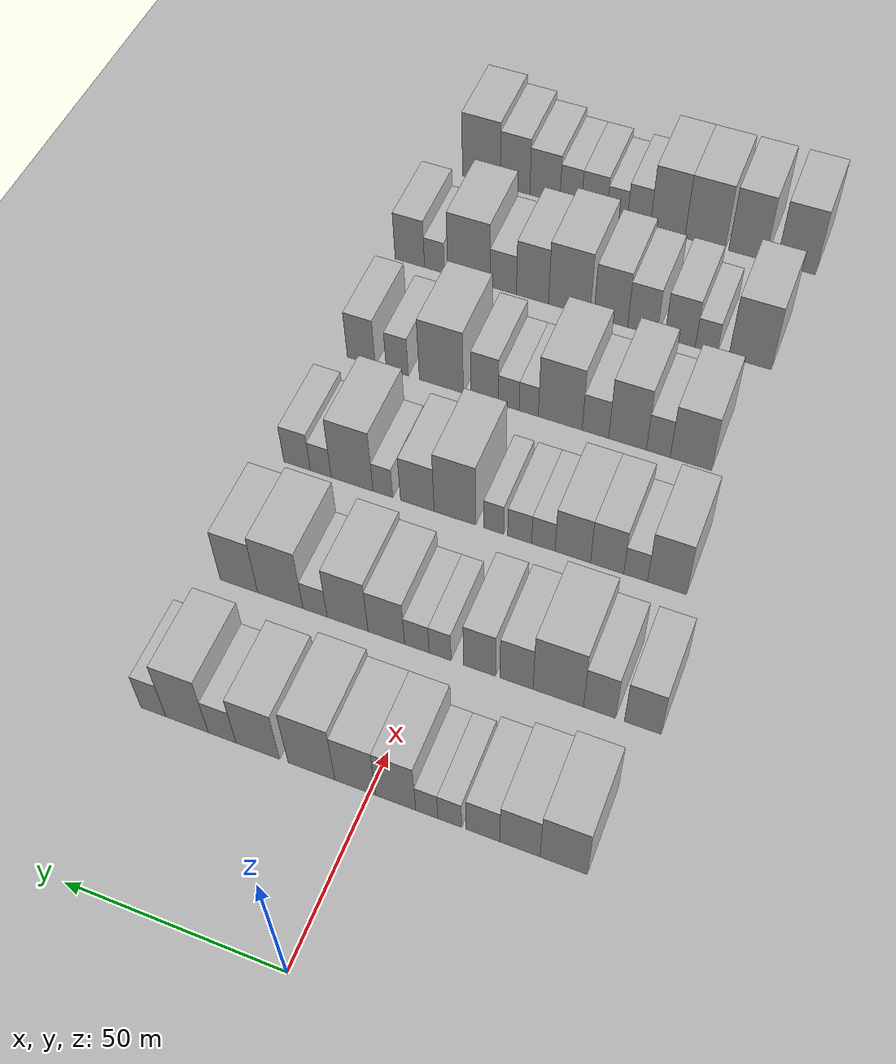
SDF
<sdf version="1.6">
 <world name="default">
  <include><name>ground_plane_1</name><uri>model://HANNAS_ground_plane</uri></include>
  <include>
   <name>ground_plane_2</name>
   <uri>model://HANNAS_ground_plane</uri>
   <pose>100 0 0  0 0 0</pose>
  </include>
  <model name="building_58">
   <static>1</static>
   <pose>50.0000 -43.3810 0 0.000000 0.000000 0.000000</pose>
   <link name="link">
    <pose>0 0 10.50 0 0 0</pose>
    <collision name="collision"><geometry><box><size>20.0000 10.2477 21.0000</size></box></geometry></collision>
    <visual name="visual">
     <cast_shadows>0</cast_shadows>
     <geometry><box><size>20.0000 10.2477 21.0000</size></box></geometry>
     <material>
      <script>
       <uri>model://HANNAS_wall/materials/scripts</uri>
       <uri>model://HANNAS_wall/materials/textures</uri>
       <name>vrc/HANNAS_wall</name>
      </script>
     </material>
    </visual>
   </link>
  </model>
  <model name="building_59">
   <static>1</static>
   <pose>50.0000 -33.8395 0 0.000000 0.000000 0.000000</pose>
   <link name="link">
    <pose>0 0 9.00 0 0 0</pose>
    <collision name="collision"><geometry><box><size>20.0000 8.8353 18.0000</size></box></geometry></collision>
    <visual name="visual">
     <cast_shadows>0</cast_shadows>
     <geometry><box><size>20.0000 8.8353 18.0000</size></box></geometry>
     <material>
      <script>
       <uri>model://HANNAS_wall/materials/scripts</uri>
       <uri>model://HANNAS_wall/materials/textures</uri>
       <name>vrc/HANNAS_wall</name>
      </script>
     </material>
    </visual>
   </link>
  </model>
  <model name="building_60">
   <static>1</static>
   <pose>50.0000 -25.6887 0 0.000000 0.000000 0.000000</pose>
   <link name="link">
    <pose>0 0 7.50 0 0 0</pose>
    <collision name="collision"><geometry><box><size>20.0000 7.4663 15.0000</size></box></geometry></collision>
    <visual name="visual">
     <cast_shadows>0</cast_shadows>
     <geometry><box><size>20.0000 7.4663 15.0000</size></box></geometry>
     <material>
      <script>
       <uri>model://HANNAS_wall/materials/scripts</uri>
       <uri>model://HANNAS_wall/materials/textures</uri>
       <name>vrc/HANNAS_wall</name>
      </script>
     </material>
    </visual>
   </link>
  </model>
  <model name="building_61">
   <static>1</static>
   <pose>50.0000 -18.2932 0 0.000000 0.000000 0.000000</pose>
   <link name="link">
    <pose>0 0 6.00 0 0 0</pose>
    <collision name="collision"><geometry><box><size>20.0000 5.3248 12.0000</size></box></geometry></collision>
    <visual name="visual">
     <cast_shadows>0</cast_shadows>
     <geometry><box><size>20.0000 5.3248 12.0000</size></box></geometry>
     <material>
      <script>
       <uri>model://HANNAS_wall/materials/scripts</uri>
       <uri>model://HANNAS_wall/materials/textures</uri>
       <name>vrc/HANNAS_wall</name>
      </script>
     </material>
    </visual>
   </link>
  </model>
  <model name="building_62">
   <static>1</static>
   <pose>50.0000 -13.1218 0 0.000000 0.000000 0.000000</pose>
   <link name="link">
    <pose>0 0 6.00 0 0 0</pose>
    <collision name="collision"><geometry><box><size>20.0000 5.0180 12.0000</size></box></geometry></collision>
    <visual name="visual">
     <cast_shadows>0</cast_shadows>
     <geometry><box><size>20.0000 5.0180 12.0000</size></box></geometry>
     <material>
      <script>
       <uri>model://HANNAS_wall/materials/scripts</uri>
       <uri>model://HANNAS_wall/materials/textures</uri>
       <name>vrc/HANNAS_wall</name>
      </script>
     </material>
    </visual>
   </link>
  </model>
  <model name="building_63">
   <static>1</static>
   <pose>50.0000 -6.0770 0 0.000000 0.000000 0.000000</pose>
   <link name="link">
    <pose>0 0 10.50 0 0 0</pose>
    <collision name="collision"><geometry><box><size>20.0000 9.0715 21.0000</size></box></geometry></collision>
    <visual name="visual">
     <cast_shadows>0</cast_shadows>
     <geometry><box><size>20.0000 9.0715 21.0000</size></box></geometry>
     <material>
      <script>
       <uri>model://HANNAS_wall/materials/scripts</uri>
       <uri>model://HANNAS_wall/materials/textures</uri>
       <name>vrc/HANNAS_wall</name>
      </script>
     </material>
    </visual>
   </link>
  </model>
  <model name="building_64">
   <static>1</static>
   <pose>50.0000 3.1595 0 0.000000 0.000000 0.000000</pose>
   <link name="link">
    <pose>0 0 10.50 0 0 0</pose>
    <collision name="collision"><geometry><box><size>20.0000 9.4016 21.0000</size></box></geometry></collision>
    <visual name="visual">
     <cast_shadows>0</cast_shadows>
     <geometry><box><size>20.0000 9.4016 21.0000</size></box></geometry>
     <material>
      <script>
       <uri>model://HANNAS_wall/materials/scripts</uri>
       <uri>model://HANNAS_wall/materials/textures</uri>
       <name>vrc/HANNAS_wall</name>
      </script>
     </material>
    </visual>
   </link>
  </model>
  <model name="building_65">
   <static>1</static>
   <pose>50.0000 13.3394 0 0.000000 0.000000 0.000000</pose>
   <link name="link">
    <pose>0 0 12.00 0 0 0</pose>
    <collision name="collision"><geometry><box><size>20.0000 10.9582 24.0000</size></box></geometry></collision>
    <visual name="visual">
     <cast_shadows>0</cast_shadows>
     <geometry><box><size>20.0000 10.9582 24.0000</size></box></geometry>
     <material>
      <script>
       <uri>model://HANNAS_wall/materials/scripts</uri>
       <uri>model://HANNAS_wall/materials/textures</uri>
       <name>vrc/HANNAS_wall</name>
      </script>
     </material>
    </visual>
   </link>
  </model>
  <model name="building_66">
   <static>1</static>
   <pose>50.0000 25.9769 0 0.000000 0.000000 0.000000</pose>
   <link name="link">
    <pose>0 0 10.50 0 0 0</pose>
    <collision name="collision"><geometry><box><size>20.0000 10.3168 21.0000</size></box></geometry></collision>
    <visual name="visual">
     <cast_shadows>0</cast_shadows>
     <geometry><box><size>20.0000 10.3168 21.0000</size></box></geometry>
     <material>
      <script>
       <uri>model://HANNAS_wall/materials/scripts</uri>
       <uri>model://HANNAS_wall/materials/textures</uri>
       <name>vrc/HANNAS_wall</name>
      </script>
     </material>
    </visual>
   </link>
  </model>
  <model name="building_67">
   <static>1</static>
   <pose>50.0000 34.4689 0 0.000000 0.000000 0.000000</pose>
   <link name="link">
    <pose>0 0 7.50 0 0 0</pose>
    <collision name="collision"><geometry><box><size>20.0000 6.6673 15.0000</size></box></geometry></collision>
    <visual name="visual">
     <cast_shadows>0</cast_shadows>
     <geometry><box><size>20.0000 6.6673 15.0000</size></box></geometry>
     <material>
      <script>
       <uri>model://HANNAS_wall/materials/scripts</uri>
       <uri>model://HANNAS_wall/materials/textures</uri>
       <name>vrc/HANNAS_wall</name>
      </script>
     </material>
    </visual>
   </link>
  </model>
  <model name="building_68">
   <static>1</static>
   <pose>50.0000 42.9290 0 0.000000 0.000000 0.000000</pose>
   <link name="link">
    <pose>0 0 12.00 0 0 0</pose>
    <collision name="collision"><geometry><box><size>20.0000 10.2528 24.0000</size></box></geometry></collision>
    <visual name="visual">
     <cast_shadows>0</cast_shadows>
     <geometry><box><size>20.0000 10.2528 24.0000</size></box></geometry>
     <material>
      <script>
       <uri>model://HANNAS_wall/materials/scripts</uri>
       <uri>model://HANNAS_wall/materials/textures</uri>
       <name>vrc/HANNAS_wall</name>
      </script>
     </material>
    </visual>
   </link>
  </model>
  <model name="building_69">
   <static>1</static>
   <pose>50.0000 51.0930 0 0.000000 0.000000 0.000000</pose>
   <link name="link">
    <pose>0 0 7.50 0 0 0</pose>
    <collision name="collision"><geometry><box><size>20.0000 6.0752 15.0000</size></box></geometry></collision>
    <visual name="visual">
     <cast_shadows>0</cast_shadows>
     <geometry><box><size>20.0000 6.0752 15.0000</size></box></geometry>
     <material>
      <script>
       <uri>model://HANNAS_wall/materials/scripts</uri>
       <uri>model://HANNAS_wall/materials/textures</uri>
       <name>vrc/HANNAS_wall</name>
      </script>
     </material>
    </visual>
   </link>
  </model>
  <model name="building_189">
   <static>1</static>
   <pose>85.0000 -49.0191 0 0.000000 0.000000 0.000000</pose>
   <link name="link">
    <pose>0 0 9.00 0 0 0</pose>
    <collision name="collision"><geometry><box><size>20.0000 8.3148 18.0000</size></box></geometry></collision>
    <visual name="visual">
     <cast_shadows>0</cast_shadows>
     <geometry><box><size>20.0000 8.3148 18.0000</size></box></geometry>
     <material>
      <script>
       <uri>model://HANNAS_wall/materials/scripts</uri>
       <uri>model://HANNAS_wall/materials/textures</uri>
       <name>vrc/HANNAS_wall</name>
      </script>
     </material>
    </visual>
   </link>
  </model>
  <model name="building_190">
   <static>1</static>
   <pose>85.0000 -39.1800 0 0.000000 0.000000 0.000000</pose>
   <link name="link">
    <pose>0 0 9.00 0 0 0</pose>
    <collision name="collision"><geometry><box><size>20.0000 7.3633 18.0000</size></box></geometry></collision>
    <visual name="visual">
     <cast_shadows>0</cast_shadows>
     <geometry><box><size>20.0000 7.3633 18.0000</size></box></geometry>
     <material>
      <script>
       <uri>model://HANNAS_wall/materials/scripts</uri>
       <uri>model://HANNAS_wall/materials/textures</uri>
       <name>vrc/HANNAS_wall</name>
      </script>
     </material>
    </visual>
   </link>
  </model>
  <model name="building_191">
   <static>1</static>
   <pose>85.0000 -29.6433 0 0.000000 0.000000 0.000000</pose>
   <link name="link">
    <pose>0 0 12.00 0 0 0</pose>
    <collision name="collision"><geometry><box><size>20.0000 11.7102 24.0000</size></box></geometry></collision>
    <visual name="visual">
     <cast_shadows>0</cast_shadows>
     <geometry><box><size>20.0000 11.7102 24.0000</size></box></geometry>
     <material>
      <script>
       <uri>model://HANNAS_wall/materials/scripts</uri>
       <uri>model://HANNAS_wall/materials/textures</uri>
       <name>vrc/HANNAS_wall</name>
      </script>
     </material>
    </visual>
   </link>
  </model>
  <model name="building_192">
   <static>1</static>
   <pose>85.0000 -19.9071 0 0.000000 0.000000 0.000000</pose>
   <link name="link">
    <pose>0 0 9.00 0 0 0</pose>
    <collision name="collision"><geometry><box><size>20.0000 7.7620 18.0000</size></box></geometry></collision>
    <visual name="visual">
     <cast_shadows>0</cast_shadows>
     <geometry><box><size>20.0000 7.7620 18.0000</size></box></geometry>
     <material>
      <script>
       <uri>model://HANNAS_wall/materials/scripts</uri>
       <uri>model://HANNAS_wall/materials/textures</uri>
       <name>vrc/HANNAS_wall</name>
      </script>
     </material>
    </visual>
   </link>
  </model>
  <model name="building_193">
   <static>1</static>
   <pose>85.0000 -11.2495 0 0.000000 0.000000 0.000000</pose>
   <link name="link">
    <pose>0 0 9.00 0 0 0</pose>
    <collision name="collision"><geometry><box><size>20.0000 7.5532 18.0000</size></box></geometry></collision>
    <visual name="visual">
     <cast_shadows>0</cast_shadows>
     <geometry><box><size>20.0000 7.5532 18.0000</size></box></geometry>
     <material>
      <script>
       <uri>model://HANNAS_wall/materials/scripts</uri>
       <uri>model://HANNAS_wall/materials/textures</uri>
       <name>vrc/HANNAS_wall</name>
      </script>
     </material>
    </visual>
   </link>
  </model>
  <model name="building_194">
   <static>1</static>
   <pose>85.0000 -1.8340 0 0.000000 0.000000 0.000000</pose>
   <link name="link">
    <pose>0 0 6.00 0 0 0</pose>
    <collision name="collision"><geometry><box><size>20.0000 5.2779 12.0000</size></box></geometry></collision>
    <visual name="visual">
     <cast_shadows>0</cast_shadows>
     <geometry><box><size>20.0000 5.2779 12.0000</size></box></geometry>
     <material>
      <script>
       <uri>model://HANNAS_wall/materials/scripts</uri>
       <uri>model://HANNAS_wall/materials/textures</uri>
       <name>vrc/HANNAS_wall</name>
      </script>
     </material>
    </visual>
   </link>
  </model>
  <model name="building_195">
   <static>1</static>
   <pose>85.0000 3.7657 0 0.000000 0.000000 0.000000</pose>
   <link name="link">
    <pose>0 0 6.00 0 0 0</pose>
    <collision name="collision"><geometry><box><size>20.0000 5.9214 12.0000</size></box></geometry></collision>
    <visual name="visual">
     <cast_shadows>0</cast_shadows>
     <geometry><box><size>20.0000 5.9214 12.0000</size></box></geometry>
     <material>
      <script>
       <uri>model://HANNAS_wall/materials/scripts</uri>
       <uri>model://HANNAS_wall/materials/textures</uri>
       <name>vrc/HANNAS_wall</name>
      </script>
     </material>
    </visual>
   </link>
  </model>
  <model name="building_196">
   <static>1</static>
   <pose>85.0000 11.1838 0 0.000000 0.000000 0.000000</pose>
   <link name="link">
    <pose>0 0 9.00 0 0 0</pose>
    <collision name="collision"><geometry><box><size>20.0000 8.9149 18.0000</size></box></geometry></collision>
    <visual name="visual">
     <cast_shadows>0</cast_shadows>
     <geometry><box><size>20.0000 8.9149 18.0000</size></box></geometry>
     <material>
      <script>
       <uri>model://HANNAS_wall/materials/scripts</uri>
       <uri>model://HANNAS_wall/materials/textures</uri>
       <name>vrc/HANNAS_wall</name>
      </script>
     </material>
    </visual>
   </link>
  </model>
  <model name="building_197">
   <static>1</static>
   <pose>85.0000 20.6890 0 0.000000 0.000000 0.000000</pose>
   <link name="link">
    <pose>0 0 10.50 0 0 0</pose>
    <collision name="collision"><geometry><box><size>20.0000 10.0955 21.0000</size></box></geometry></collision>
    <visual name="visual">
     <cast_shadows>0</cast_shadows>
     <geometry><box><size>20.0000 10.0955 21.0000</size></box></geometry>
     <material>
      <script>
       <uri>model://HANNAS_wall/materials/scripts</uri>
       <uri>model://HANNAS_wall/materials/textures</uri>
       <name>vrc/HANNAS_wall</name>
      </script>
     </material>
    </visual>
   </link>
  </model>
  <model name="building_198">
   <static>1</static>
   <pose>85.0000 28.7347 0 0.000000 0.000000 0.000000</pose>
   <link name="link">
    <pose>0 0 6.00 0 0 0</pose>
    <collision name="collision"><geometry><box><size>20.0000 5.9960 12.0000</size></box></geometry></collision>
    <visual name="visual">
     <cast_shadows>0</cast_shadows>
     <geometry><box><size>20.0000 5.9960 12.0000</size></box></geometry>
     <material>
      <script>
       <uri>model://HANNAS_wall/materials/scripts</uri>
       <uri>model://HANNAS_wall/materials/textures</uri>
       <name>vrc/HANNAS_wall</name>
      </script>
     </material>
    </visual>
   </link>
  </model>
  <model name="building_199">
   <static>1</static>
   <pose>85.0000 37.4100 0 0.000000 0.000000 0.000000</pose>
   <link name="link">
    <pose>0 0 12.00 0 0 0</pose>
    <collision name="collision"><geometry><box><size>20.0000 11.3546 24.0000</size></box></geometry></collision>
    <visual name="visual">
     <cast_shadows>0</cast_shadows>
     <geometry><box><size>20.0000 11.3546 24.0000</size></box></geometry>
     <material>
      <script>
       <uri>model://HANNAS_wall/materials/scripts</uri>
       <uri>model://HANNAS_wall/materials/textures</uri>
       <name>vrc/HANNAS_wall</name>
      </script>
     </material>
    </visual>
   </link>
  </model>
  <model name="building_200">
   <static>1</static>
   <pose>85.0000 47.8428 0 0.000000 0.000000 0.000000</pose>
   <link name="link">
    <pose>0 0 10.50 0 0 0</pose>
    <collision name="collision"><geometry><box><size>20.0000 9.5109 21.0000</size></box></geometry></collision>
    <visual name="visual">
     <cast_shadows>0</cast_shadows>
     <geometry><box><size>20.0000 9.5109 21.0000</size></box></geometry>
     <material>
      <script>
       <uri>model://HANNAS_wall/materials/scripts</uri>
       <uri>model://HANNAS_wall/materials/textures</uri>
       <name>vrc/HANNAS_wall</name>
      </script>
     </material>
    </visual>
   </link>
  </model>
  <model name="building_317">
   <static>1</static>
   <pose>120.0000 -43.5083 0 0.000000 0.000000 0.000000</pose>
   <link name="link">
    <pose>0 0 10.50 0 0 0</pose>
    <collision name="collision"><geometry><box><size>20.0000 9.3538 21.0000</size></box></geometry></collision>
    <visual name="visual">
     <cast_shadows>0</cast_shadows>
     <geometry><box><size>20.0000 9.3538 21.0000</size></box></geometry>
     <material>
      <script>
       <uri>model://HANNAS_wall/materials/scripts</uri>
       <uri>model://HANNAS_wall/materials/textures</uri>
       <name>vrc/HANNAS_wall</name>
      </script>
     </material>
    </visual>
   </link>
  </model>
  <model name="building_318">
   <static>1</static>
   <pose>120.0000 -35.9834 0 0.000000 0.000000 0.000000</pose>
   <link name="link">
    <pose>0 0 6.00 0 0 0</pose>
    <collision name="collision"><geometry><box><size>20.0000 5.6960 12.0000</size></box></geometry></collision>
    <visual name="visual">
     <cast_shadows>0</cast_shadows>
     <geometry><box><size>20.0000 5.6960 12.0000</size></box></geometry>
     <material>
      <script>
       <uri>model://HANNAS_wall/materials/scripts</uri>
       <uri>model://HANNAS_wall/materials/textures</uri>
       <name>vrc/HANNAS_wall</name>
      </script>
     </material>
    </visual>
   </link>
  </model>
  <model name="building_319">
   <static>1</static>
   <pose>120.0000 -29.0866 0 0.000000 0.000000 0.000000</pose>
   <link name="link">
    <pose>0 0 9.00 0 0 0</pose>
    <collision name="collision"><geometry><box><size>20.0000 8.0976 18.0000</size></box></geometry></collision>
    <visual name="visual">
     <cast_shadows>0</cast_shadows>
     <geometry><box><size>20.0000 8.0976 18.0000</size></box></geometry>
     <material>
      <script>
       <uri>model://HANNAS_wall/materials/scripts</uri>
       <uri>model://HANNAS_wall/materials/textures</uri>
       <name>vrc/HANNAS_wall</name>
      </script>
     </material>
    </visual>
   </link>
  </model>
  <model name="building_320">
   <static>1</static>
   <pose>120.0000 -20.6810 0 0.000000 0.000000 0.000000</pose>
   <link name="link">
    <pose>0 0 9.00 0 0 0</pose>
    <collision name="collision"><geometry><box><size>20.0000 8.7137 18.0000</size></box></geometry></collision>
    <visual name="visual">
     <cast_shadows>0</cast_shadows>
     <geometry><box><size>20.0000 8.7137 18.0000</size></box></geometry>
     <material>
      <script>
       <uri>model://HANNAS_wall/materials/scripts</uri>
       <uri>model://HANNAS_wall/materials/textures</uri>
       <name>vrc/HANNAS_wall</name>
      </script>
     </material>
    </visual>
   </link>
  </model>
  <model name="building_321">
   <static>1</static>
   <pose>120.0000 -13.4389 0 0.000000 0.000000 0.000000</pose>
   <link name="link">
    <pose>0 0 6.00 0 0 0</pose>
    <collision name="collision"><geometry><box><size>20.0000 5.7705 12.0000</size></box></geometry></collision>
    <visual name="visual">
     <cast_shadows>0</cast_shadows>
     <geometry><box><size>20.0000 5.7705 12.0000</size></box></geometry>
     <material>
      <script>
       <uri>model://HANNAS_wall/materials/scripts</uri>
       <uri>model://HANNAS_wall/materials/textures</uri>
       <name>vrc/HANNAS_wall</name>
      </script>
     </material>
    </visual>
   </link>
  </model>
  <model name="building_322">
   <static>1</static>
   <pose>120.0000 -7.5664 0 0.000000 0.000000 0.000000</pose>
   <link name="link">
    <pose>0 0 6.00 0 0 0</pose>
    <collision name="collision"><geometry><box><size>20.0000 5.9745 12.0000</size></box></geometry></collision>
    <visual name="visual">
     <cast_shadows>0</cast_shadows>
     <geometry><box><size>20.0000 5.9745 12.0000</size></box></geometry>
     <material>
      <script>
       <uri>model://HANNAS_wall/materials/scripts</uri>
       <uri>model://HANNAS_wall/materials/textures</uri>
       <name>vrc/HANNAS_wall</name>
      </script>
     </material>
    </visual>
   </link>
  </model>
  <model name="building_323">
   <static>1</static>
   <pose>120.0000 -1.0711 0 0.000000 0.000000 0.000000</pose>
   <link name="link">
    <pose>0 0 6.00 0 0 0</pose>
    <collision name="collision"><geometry><box><size>20.0000 5.0162 12.0000</size></box></geometry></collision>
    <visual name="visual">
     <cast_shadows>0</cast_shadows>
     <geometry><box><size>20.0000 5.0162 12.0000</size></box></geometry>
     <material>
      <script>
       <uri>model://HANNAS_wall/materials/scripts</uri>
       <uri>model://HANNAS_wall/materials/textures</uri>
       <name>vrc/HANNAS_wall</name>
      </script>
     </material>
    </visual>
   </link>
  </model>
  <model name="building_324">
   <static>1</static>
   <pose>120.0000 8.6965 0 0.000000 0.000000 0.000000</pose>
   <link name="link">
    <pose>0 0 12.00 0 0 0</pose>
    <collision name="collision"><geometry><box><size>20.0000 10.5190 24.0000</size></box></geometry></collision>
    <visual name="visual">
     <cast_shadows>0</cast_shadows>
     <geometry><box><size>20.0000 10.5190 24.0000</size></box></geometry>
     <material>
      <script>
       <uri>model://HANNAS_wall/materials/scripts</uri>
       <uri>model://HANNAS_wall/materials/textures</uri>
       <name>vrc/HANNAS_wall</name>
      </script>
     </material>
    </visual>
   </link>
  </model>
  <model name="building_325">
   <static>1</static>
   <pose>120.0000 18.2817 0 0.000000 0.000000 0.000000</pose>
   <link name="link">
    <pose>0 0 9.00 0 0 0</pose>
    <collision name="collision"><geometry><box><size>20.0000 8.6515 18.0000</size></box></geometry></collision>
    <visual name="visual">
     <cast_shadows>0</cast_shadows>
     <geometry><box><size>20.0000 8.6515 18.0000</size></box></geometry>
     <material>
      <script>
       <uri>model://HANNAS_wall/materials/scripts</uri>
       <uri>model://HANNAS_wall/materials/textures</uri>
       <name>vrc/HANNAS_wall</name>
      </script>
     </material>
    </visual>
   </link>
  </model>
  <model name="building_326">
   <static>1</static>
   <pose>120.0000 27.1608 0 0.000000 0.000000 0.000000</pose>
   <link name="link">
    <pose>0 0 6.00 0 0 0</pose>
    <collision name="collision"><geometry><box><size>20.0000 5.1066 12.0000</size></box></geometry></collision>
    <visual name="visual">
     <cast_shadows>0</cast_shadows>
     <geometry><box><size>20.0000 5.1066 12.0000</size></box></geometry>
     <material>
      <script>
       <uri>model://HANNAS_wall/materials/scripts</uri>
       <uri>model://HANNAS_wall/materials/textures</uri>
       <name>vrc/HANNAS_wall</name>
      </script>
     </material>
    </visual>
   </link>
  </model>
  <model name="building_327">
   <static>1</static>
   <pose>120.0000 35.1837 0 0.000000 0.000000 0.000000</pose>
   <link name="link">
    <pose>0 0 12.00 0 0 0</pose>
    <collision name="collision"><geometry><box><size>20.0000 10.9392 24.0000</size></box></geometry></collision>
    <visual name="visual">
     <cast_shadows>0</cast_shadows>
     <geometry><box><size>20.0000 10.9392 24.0000</size></box></geometry>
     <material>
      <script>
       <uri>model://HANNAS_wall/materials/scripts</uri>
       <uri>model://HANNAS_wall/materials/textures</uri>
       <name>vrc/HANNAS_wall</name>
      </script>
     </material>
    </visual>
   </link>
  </model>
  <model name="building_328">
   <static>1</static>
   <pose>120.0000 43.4002 0 0.000000 0.000000 0.000000</pose>
   <link name="link">
    <pose>0 0 6.00 0 0 0</pose>
    <collision name="collision"><geometry><box><size>20.0000 5.4940 12.0000</size></box></geometry></collision>
    <visual name="visual">
     <cast_shadows>0</cast_shadows>
     <geometry><box><size>20.0000 5.4940 12.0000</size></box></geometry>
     <material>
      <script>
       <uri>model://HANNAS_wall/materials/scripts</uri>
       <uri>model://HANNAS_wall/materials/textures</uri>
       <name>vrc/HANNAS_wall</name>
      </script>
     </material>
    </visual>
   </link>
  </model>
  <model name="building_329">
   <static>1</static>
   <pose>120.0000 49.6691 0 0.000000 0.000000 0.000000</pose>
   <link name="link">
    <pose>0 0 7.50 0 0 0</pose>
    <collision name="collision"><geometry><box><size>20.0000 7.0437 15.0000</size></box></geometry></collision>
    <visual name="visual">
     <cast_shadows>0</cast_shadows>
     <geometry><box><size>20.0000 7.0437 15.0000</size></box></geometry>
     <material>
      <script>
       <uri>model://HANNAS_wall/materials/scripts</uri>
       <uri>model://HANNAS_wall/materials/textures</uri>
       <name>vrc/HANNAS_wall</name>
      </script>
     </material>
    </visual>
   </link>
  </model>
  <model name="building_445">
   <static>1</static>
   <pose>155.0000 -38.5540 0 0.000000 0.000000 0.000000</pose>
   <link name="link">
    <pose>0 0 10.50 0 0 0</pose>
    <collision name="collision"><geometry><box><size>20.0000 10.4500 21.0000</size></box></geometry></collision>
    <visual name="visual">
     <cast_shadows>0</cast_shadows>
     <geometry><box><size>20.0000 10.4500 21.0000</size></box></geometry>
     <material>
      <script>
       <uri>model://HANNAS_wall/materials/scripts</uri>
       <uri>model://HANNAS_wall/materials/textures</uri>
       <name>vrc/HANNAS_wall</name>
      </script>
     </material>
    </visual>
   </link>
  </model>
  <model name="building_446">
   <static>1</static>
   <pose>155.0000 -30.3167 0 0.000000 0.000000 0.000000</pose>
   <link name="link">
    <pose>0 0 7.50 0 0 0</pose>
    <collision name="collision"><geometry><box><size>20.0000 6.0246 15.0000</size></box></geometry></collision>
    <visual name="visual">
     <cast_shadows>0</cast_shadows>
     <geometry><box><size>20.0000 6.0246 15.0000</size></box></geometry>
     <material>
      <script>
       <uri>model://HANNAS_wall/materials/scripts</uri>
       <uri>model://HANNAS_wall/materials/textures</uri>
       <name>vrc/HANNAS_wall</name>
      </script>
     </material>
    </visual>
   </link>
  </model>
  <model name="building_447">
   <static>1</static>
   <pose>155.0000 -22.4747 0 0.000000 0.000000 0.000000</pose>
   <link name="link">
    <pose>0 0 12.00 0 0 0</pose>
    <collision name="collision"><geometry><box><size>20.0000 9.6593 24.0000</size></box></geometry></collision>
    <visual name="visual">
     <cast_shadows>0</cast_shadows>
     <geometry><box><size>20.0000 9.6593 24.0000</size></box></geometry>
     <material>
      <script>
       <uri>model://HANNAS_wall/materials/scripts</uri>
       <uri>model://HANNAS_wall/materials/textures</uri>
       <name>vrc/HANNAS_wall</name>
      </script>
     </material>
    </visual>
   </link>
  </model>
  <model name="building_448">
   <static>1</static>
   <pose>155.0000 -14.2275 0 0.000000 0.000000 0.000000</pose>
   <link name="link">
    <pose>0 0 7.50 0 0 0</pose>
    <collision name="collision"><geometry><box><size>20.0000 6.8351 15.0000</size></box></geometry></collision>
    <visual name="visual">
     <cast_shadows>0</cast_shadows>
     <geometry><box><size>20.0000 6.8351 15.0000</size></box></geometry>
     <material>
      <script>
       <uri>model://HANNAS_wall/materials/scripts</uri>
       <uri>model://HANNAS_wall/materials/textures</uri>
       <name>vrc/HANNAS_wall</name>
      </script>
     </material>
    </visual>
   </link>
  </model>
  <model name="building_449">
   <static>1</static>
   <pose>155.0000 -5.0832 0 0.000000 0.000000 0.000000</pose>
   <link name="link">
    <pose>0 0 12.00 0 0 0</pose>
    <collision name="collision"><geometry><box><size>20.0000 11.4535 24.0000</size></box></geometry></collision>
    <visual name="visual">
     <cast_shadows>0</cast_shadows>
     <geometry><box><size>20.0000 11.4535 24.0000</size></box></geometry>
     <material>
      <script>
       <uri>model://HANNAS_wall/materials/scripts</uri>
       <uri>model://HANNAS_wall/materials/textures</uri>
       <name>vrc/HANNAS_wall</name>
      </script>
     </material>
    </visual>
   </link>
  </model>
  <model name="building_450">
   <static>1</static>
   <pose>155.0000 3.1539 0 0.000000 0.000000 0.000000</pose>
   <link name="link">
    <pose>0 0 6.00 0 0 0</pose>
    <collision name="collision"><geometry><box><size>20.0000 5.0205 12.0000</size></box></geometry></collision>
    <visual name="visual">
     <cast_shadows>0</cast_shadows>
     <geometry><box><size>20.0000 5.0205 12.0000</size></box></geometry>
     <material>
      <script>
       <uri>model://HANNAS_wall/materials/scripts</uri>
       <uri>model://HANNAS_wall/materials/textures</uri>
       <name>vrc/HANNAS_wall</name>
      </script>
     </material>
    </visual>
   </link>
  </model>
  <model name="building_451">
   <static>1</static>
   <pose>155.0000 8.4193 0 0.000000 0.000000 0.000000</pose>
   <link name="link">
    <pose>0 0 6.00 0 0 0</pose>
    <collision name="collision"><geometry><box><size>20.0000 5.5104 12.0000</size></box></geometry></collision>
    <visual name="visual">
     <cast_shadows>0</cast_shadows>
     <geometry><box><size>20.0000 5.5104 12.0000</size></box></geometry>
     <material>
      <script>
       <uri>model://HANNAS_wall/materials/scripts</uri>
       <uri>model://HANNAS_wall/materials/textures</uri>
       <name>vrc/HANNAS_wall</name>
      </script>
     </material>
    </visual>
   </link>
  </model>
  <model name="building_452">
   <static>1</static>
   <pose>155.0000 14.8292 0 0.000000 0.000000 0.000000</pose>
   <link name="link">
    <pose>0 0 9.00 0 0 0</pose>
    <collision name="collision"><geometry><box><size>20.0000 7.3094 18.0000</size></box></geometry></collision>
    <visual name="visual">
     <cast_shadows>0</cast_shadows>
     <geometry><box><size>20.0000 7.3094 18.0000</size></box></geometry>
     <material>
      <script>
       <uri>model://HANNAS_wall/materials/scripts</uri>
       <uri>model://HANNAS_wall/materials/textures</uri>
       <name>vrc/HANNAS_wall</name>
      </script>
     </material>
    </visual>
   </link>
  </model>
  <model name="building_453">
   <static>1</static>
   <pose>155.0000 26.4109 0 0.000000 0.000000 0.000000</pose>
   <link name="link">
    <pose>0 0 12.00 0 0 0</pose>
    <collision name="collision"><geometry><box><size>20.0000 11.8538 24.0000</size></box></geometry></collision>
    <visual name="visual">
     <cast_shadows>0</cast_shadows>
     <geometry><box><size>20.0000 11.8538 24.0000</size></box></geometry>
     <material>
      <script>
       <uri>model://HANNAS_wall/materials/scripts</uri>
       <uri>model://HANNAS_wall/materials/textures</uri>
       <name>vrc/HANNAS_wall</name>
      </script>
     </material>
    </visual>
   </link>
  </model>
  <model name="building_454">
   <static>1</static>
   <pose>155.0000 38.3638 0 0.000000 0.000000 0.000000</pose>
   <link name="link">
    <pose>0 0 7.50 0 0 0</pose>
    <collision name="collision"><geometry><box><size>20.0000 6.0521 15.0000</size></box></geometry></collision>
    <visual name="visual">
     <cast_shadows>0</cast_shadows>
     <geometry><box><size>20.0000 6.0521 15.0000</size></box></geometry>
     <material>
      <script>
       <uri>model://HANNAS_wall/materials/scripts</uri>
       <uri>model://HANNAS_wall/materials/textures</uri>
       <name>vrc/HANNAS_wall</name>
      </script>
     </material>
    </visual>
   </link>
  </model>
  <model name="building_455">
   <static>1</static>
   <pose>155.0000 48.2417 0 0.000000 0.000000 0.000000</pose>
   <link name="link">
    <pose>0 0 9.00 0 0 0</pose>
    <collision name="collision"><geometry><box><size>20.0000 7.7036 18.0000</size></box></geometry></collision>
    <visual name="visual">
     <cast_shadows>0</cast_shadows>
     <geometry><box><size>20.0000 7.7036 18.0000</size></box></geometry>
     <material>
      <script>
       <uri>model://HANNAS_wall/materials/scripts</uri>
       <uri>model://HANNAS_wall/materials/textures</uri>
       <name>vrc/HANNAS_wall</name>
      </script>
     </material>
    </visual>
   </link>
  </model>
  <model name="building_576">
   <static>1</static>
   <pose>190.0000 -43.4817 0 0.000000 0.000000 0.000000</pose>
   <link name="link">
    <pose>0 0 12.00 0 0 0</pose>
    <collision name="collision"><geometry><box><size>20.0000 11.1674 24.0000</size></box></geometry></collision>
    <visual name="visual">
     <cast_shadows>0</cast_shadows>
     <geometry><box><size>20.0000 11.1674 24.0000</size></box></geometry>
     <material>
      <script>
       <uri>model://HANNAS_wall/materials/scripts</uri>
       <uri>model://HANNAS_wall/materials/textures</uri>
       <name>vrc/HANNAS_wall</name>
      </script>
     </material>
    </visual>
   </link>
  </model>
  <model name="building_577">
   <static>1</static>
   <pose>190.0000 -31.9880 0 0.000000 0.000000 0.000000</pose>
   <link name="link">
    <pose>0 0 6.00 0 0 0</pose>
    <collision name="collision"><geometry><box><size>20.0000 5.8200 12.0000</size></box></geometry></collision>
    <visual name="visual">
     <cast_shadows>0</cast_shadows>
     <geometry><box><size>20.0000 5.8200 12.0000</size></box></geometry>
     <material>
      <script>
       <uri>model://HANNAS_wall/materials/scripts</uri>
       <uri>model://HANNAS_wall/materials/textures</uri>
       <name>vrc/HANNAS_wall</name>
      </script>
     </material>
    </visual>
   </link>
  </model>
  <model name="building_578">
   <static>1</static>
   <pose>190.0000 -25.0011 0 0.000000 0.000000 0.000000</pose>
   <link name="link">
    <pose>0 0 9.00 0 0 0</pose>
    <collision name="collision"><geometry><box><size>20.0000 8.1540 18.0000</size></box></geometry></collision>
    <visual name="visual">
     <cast_shadows>0</cast_shadows>
     <geometry><box><size>20.0000 8.1540 18.0000</size></box></geometry>
     <material>
      <script>
       <uri>model://HANNAS_wall/materials/scripts</uri>
       <uri>model://HANNAS_wall/materials/textures</uri>
       <name>vrc/HANNAS_wall</name>
      </script>
     </material>
    </visual>
   </link>
  </model>
  <model name="building_579">
   <static>1</static>
   <pose>190.0000 -14.9436 0 0.000000 0.000000 0.000000</pose>
   <link name="link">
    <pose>0 0 9.00 0 0 0</pose>
    <collision name="collision"><geometry><box><size>20.0000 7.9608 18.0000</size></box></geometry></collision>
    <visual name="visual">
     <cast_shadows>0</cast_shadows>
     <geometry><box><size>20.0000 7.9608 18.0000</size></box></geometry>
     <material>
      <script>
       <uri>model://HANNAS_wall/materials/scripts</uri>
       <uri>model://HANNAS_wall/materials/textures</uri>
       <name>vrc/HANNAS_wall</name>
      </script>
     </material>
    </visual>
   </link>
  </model>
  <model name="building_580">
   <static>1</static>
   <pose>190.0000 -6.3764 0 0.000000 0.000000 0.000000</pose>
   <link name="link">
    <pose>0 0 10.50 0 0 0</pose>
    <collision name="collision"><geometry><box><size>20.0000 9.1738 21.0000</size></box></geometry></collision>
    <visual name="visual">
     <cast_shadows>0</cast_shadows>
     <geometry><box><size>20.0000 9.1738 21.0000</size></box></geometry>
     <material>
      <script>
       <uri>model://HANNAS_wall/materials/scripts</uri>
       <uri>model://HANNAS_wall/materials/textures</uri>
       <name>vrc/HANNAS_wall</name>
      </script>
     </material>
    </visual>
   </link>
  </model>
  <model name="building_581">
   <static>1</static>
   <pose>190.0000 4.9228 0 0.000000 0.000000 0.000000</pose>
   <link name="link">
    <pose>0 0 12.00 0 0 0</pose>
    <collision name="collision"><geometry><box><size>20.0000 11.4245 24.0000</size></box></geometry></collision>
    <visual name="visual">
     <cast_shadows>0</cast_shadows>
     <geometry><box><size>20.0000 11.4245 24.0000</size></box></geometry>
     <material>
      <script>
       <uri>model://HANNAS_wall/materials/scripts</uri>
       <uri>model://HANNAS_wall/materials/textures</uri>
       <name>vrc/HANNAS_wall</name>
      </script>
     </material>
    </visual>
   </link>
  </model>
  <model name="building_582">
   <static>1</static>
   <pose>190.0000 15.0983 0 0.000000 0.000000 0.000000</pose>
   <link name="link">
    <pose>0 0 10.50 0 0 0</pose>
    <collision name="collision"><geometry><box><size>20.0000 8.9265 21.0000</size></box></geometry></collision>
    <visual name="visual">
     <cast_shadows>0</cast_shadows>
     <geometry><box><size>20.0000 8.9265 21.0000</size></box></geometry>
     <material>
      <script>
       <uri>model://HANNAS_wall/materials/scripts</uri>
       <uri>model://HANNAS_wall/materials/textures</uri>
       <name>vrc/HANNAS_wall</name>
      </script>
     </material>
    </visual>
   </link>
  </model>
  <model name="building_583">
   <static>1</static>
   <pose>190.0000 23.2413 0 0.000000 0.000000 0.000000</pose>
   <link name="link">
    <pose>0 0 7.50 0 0 0</pose>
    <collision name="collision"><geometry><box><size>20.0000 7.3594 15.0000</size></box></geometry></collision>
    <visual name="visual">
     <cast_shadows>0</cast_shadows>
     <geometry><box><size>20.0000 7.3594 15.0000</size></box></geometry>
     <material>
      <script>
       <uri>model://HANNAS_wall/materials/scripts</uri>
       <uri>model://HANNAS_wall/materials/textures</uri>
       <name>vrc/HANNAS_wall</name>
      </script>
     </material>
    </visual>
   </link>
  </model>
  <model name="building_584">
   <static>1</static>
   <pose>190.0000 32.8859 0 0.000000 0.000000 0.000000</pose>
   <link name="link">
    <pose>0 0 12.00 0 0 0</pose>
    <collision name="collision"><geometry><box><size>20.0000 11.9297 24.0000</size></box></geometry></collision>
    <visual name="visual">
     <cast_shadows>0</cast_shadows>
     <geometry><box><size>20.0000 11.9297 24.0000</size></box></geometry>
     <material>
      <script>
       <uri>model://HANNAS_wall/materials/scripts</uri>
       <uri>model://HANNAS_wall/materials/textures</uri>
       <name>vrc/HANNAS_wall</name>
      </script>
     </material>
    </visual>
   </link>
  </model>
  <model name="building_585">
   <static>1</static>
   <pose>190.0000 42.6621 0 0.000000 0.000000 0.000000</pose>
   <link name="link">
    <pose>0 0 6.00 0 0 0</pose>
    <collision name="collision"><geometry><box><size>20.0000 5.6227 12.0000</size></box></geometry></collision>
    <visual name="visual">
     <cast_shadows>0</cast_shadows>
     <geometry><box><size>20.0000 5.6227 12.0000</size></box></geometry>
     <material>
      <script>
       <uri>model://HANNAS_wall/materials/scripts</uri>
       <uri>model://HANNAS_wall/materials/textures</uri>
       <name>vrc/HANNAS_wall</name>
      </script>
     </material>
    </visual>
   </link>
  </model>
  <model name="building_586">
   <static>1</static>
   <pose>190.0000 49.6929 0 0.000000 0.000000 0.000000</pose>
   <link name="link">
    <pose>0 0 9.00 0 0 0</pose>
    <collision name="collision"><geometry><box><size>20.0000 8.4390 18.0000</size></box></geometry></collision>
    <visual name="visual">
     <cast_shadows>0</cast_shadows>
     <geometry><box><size>20.0000 8.4390 18.0000</size></box></geometry>
     <material>
      <script>
       <uri>model://HANNAS_wall/materials/scripts</uri>
       <uri>model://HANNAS_wall/materials/textures</uri>
       <name>vrc/HANNAS_wall</name>
      </script>
     </material>
    </visual>
   </link>
  </model>
  <model name="building_699">
   <static>1</static>
   <pose>225.0000 -46.2312 0 0.000000 0.000000 0.000000</pose>
   <link name="link">
    <pose>0 0 12.00 0 0 0</pose>
    <collision name="collision"><geometry><box><size>20.0000 10.6002 24.0000</size></box></geometry></collision>
    <visual name="visual">
     <cast_shadows>0</cast_shadows>
     <geometry><box><size>20.0000 10.6002 24.0000</size></box></geometry>
     <material>
      <script>
       <uri>model://HANNAS_wall/materials/scripts</uri>
       <uri>model://HANNAS_wall/materials/textures</uri>
       <name>vrc/HANNAS_wall</name>
      </script>
     </material>
    </visual>
   </link>
  </model>
  <model name="building_700">
   <static>1</static>
   <pose>225.0000 -32.8656 0 0.000000 0.000000 0.000000</pose>
   <link name="link">
    <pose>0 0 12.00 0 0 0</pose>
    <collision name="collision"><geometry><box><size>20.0000 10.1310 24.0000</size></box></geometry></collision>
    <visual name="visual">
     <cast_shadows>0</cast_shadows>
     <geometry><box><size>20.0000 10.1310 24.0000</size></box></geometry>
     <material>
      <script>
       <uri>model://HANNAS_wall/materials/scripts</uri>
       <uri>model://HANNAS_wall/materials/textures</uri>
       <name>vrc/HANNAS_wall</name>
      </script>
     </material>
    </visual>
   </link>
  </model>
  <model name="building_701">
   <static>1</static>
   <pose>225.0000 -21.1915 0 0.000000 0.000000 0.000000</pose>
   <link name="link">
    <pose>0 0 12.00 0 0 0</pose>
    <collision name="collision"><geometry><box><size>20.0000 11.2171 24.0000</size></box></geometry></collision>
    <visual name="visual">
     <cast_shadows>0</cast_shadows>
     <geometry><box><size>20.0000 11.2171 24.0000</size></box></geometry>
     <material>
      <script>
       <uri>model://HANNAS_wall/materials/scripts</uri>
       <uri>model://HANNAS_wall/materials/textures</uri>
       <name>vrc/HANNAS_wall</name>
      </script>
     </material>
    </visual>
   </link>
  </model>
  <model name="building_702">
   <static>1</static>
   <pose>225.0000 -10.7027 0 0.000000 0.000000 0.000000</pose>
   <link name="link">
    <pose>0 0 12.00 0 0 0</pose>
    <collision name="collision"><geometry><box><size>20.0000 9.7603 24.0000</size></box></geometry></collision>
    <visual name="visual">
     <cast_shadows>0</cast_shadows>
     <geometry><box><size>20.0000 9.7603 24.0000</size></box></geometry>
     <material>
      <script>
       <uri>model://HANNAS_wall/materials/scripts</uri>
       <uri>model://HANNAS_wall/materials/textures</uri>
       <name>vrc/HANNAS_wall</name>
      </script>
     </material>
    </visual>
   </link>
  </model>
  <model name="building_703">
   <static>1</static>
   <pose>225.0000 -2.5884 0 0.000000 0.000000 0.000000</pose>
   <link name="link">
    <pose>0 0 7.50 0 0 0</pose>
    <collision name="collision"><geometry><box><size>20.0000 6.4683 15.0000</size></box></geometry></collision>
    <visual name="visual">
     <cast_shadows>0</cast_shadows>
     <geometry><box><size>20.0000 6.4683 15.0000</size></box></geometry>
     <material>
      <script>
       <uri>model://HANNAS_wall/materials/scripts</uri>
       <uri>model://HANNAS_wall/materials/textures</uri>
       <name>vrc/HANNAS_wall</name>
      </script>
     </material>
    </visual>
   </link>
  </model>
  <model name="building_704">
   <static>1</static>
   <pose>225.0000 3.5379 0 0.000000 0.000000 0.000000</pose>
   <link name="link">
    <pose>0 0 6.00 0 0 0</pose>
    <collision name="collision"><geometry><box><size>20.0000 5.7843 12.0000</size></box></geometry></collision>
    <visual name="visual">
     <cast_shadows>0</cast_shadows>
     <geometry><box><size>20.0000 5.7843 12.0000</size></box></geometry>
     <material>
      <script>
       <uri>model://HANNAS_wall/materials/scripts</uri>
       <uri>model://HANNAS_wall/materials/textures</uri>
       <name>vrc/HANNAS_wall</name>
      </script>
     </material>
    </visual>
   </link>
  </model>
  <model name="building_705">
   <static>1</static>
   <pose>225.0000 10.1096 0 0.000000 0.000000 0.000000</pose>
   <link name="link">
    <pose>0 0 7.50 0 0 0</pose>
    <collision name="collision"><geometry><box><size>20.0000 7.3592 15.0000</size></box></geometry></collision>
    <visual name="visual">
     <cast_shadows>0</cast_shadows>
     <geometry><box><size>20.0000 7.3592 15.0000</size></box></geometry>
     <material>
      <script>
       <uri>model://HANNAS_wall/materials/scripts</uri>
       <uri>model://HANNAS_wall/materials/textures</uri>
       <name>vrc/HANNAS_wall</name>
      </script>
     </material>
    </visual>
   </link>
  </model>
  <model name="building_706">
   <static>1</static>
   <pose>225.0000 16.8970 0 0.000000 0.000000 0.000000</pose>
   <link name="link">
    <pose>0 0 7.50 0 0 0</pose>
    <collision name="collision"><geometry><box><size>20.0000 6.2155 15.0000</size></box></geometry></collision>
    <visual name="visual">
     <cast_shadows>0</cast_shadows>
     <geometry><box><size>20.0000 6.2155 15.0000</size></box></geometry>
     <material>
      <script>
       <uri>model://HANNAS_wall/materials/scripts</uri>
       <uri>model://HANNAS_wall/materials/textures</uri>
       <name>vrc/HANNAS_wall</name>
      </script>
     </material>
    </visual>
   </link>
  </model>
  <model name="building_707">
   <static>1</static>
   <pose>225.0000 24.3791 0 0.000000 0.000000 0.000000</pose>
   <link name="link">
    <pose>0 0 9.00 0 0 0</pose>
    <collision name="collision"><geometry><box><size>20.0000 8.7487 18.0000</size></box></geometry></collision>
    <visual name="visual">
     <cast_shadows>0</cast_shadows>
     <geometry><box><size>20.0000 8.7487 18.0000</size></box></geometry>
     <material>
      <script>
       <uri>model://HANNAS_wall/materials/scripts</uri>
       <uri>model://HANNAS_wall/materials/textures</uri>
       <name>vrc/HANNAS_wall</name>
      </script>
     </material>
    </visual>
   </link>
  </model>
  <model name="building_708">
   <static>1</static>
   <pose>225.0000 33.0594 0 0.000000 0.000000 0.000000</pose>
   <link name="link">
    <pose>0 0 10.50 0 0 0</pose>
    <collision name="collision"><geometry><box><size>20.0000 8.6120 21.0000</size></box></geometry></collision>
    <visual name="visual">
     <cast_shadows>0</cast_shadows>
     <geometry><box><size>20.0000 8.6120 21.0000</size></box></geometry>
     <material>
      <script>
       <uri>model://HANNAS_wall/materials/scripts</uri>
       <uri>model://HANNAS_wall/materials/textures</uri>
       <name>vrc/HANNAS_wall</name>
      </script>
     </material>
    </visual>
   </link>
  </model>
  <model name="building_709">
   <static>1</static>
   <pose>225.0000 42.9783 0 0.000000 0.000000 0.000000</pose>
   <link name="link">
    <pose>0 0 12.00 0 0 0</pose>
    <collision name="collision"><geometry><box><size>20.0000 11.2258 24.0000</size></box></geometry></collision>
    <visual name="visual">
     <cast_shadows>0</cast_shadows>
     <geometry><box><size>20.0000 11.2258 24.0000</size></box></geometry>
     <material>
      <script>
       <uri>model://HANNAS_wall/materials/scripts</uri>
       <uri>model://HANNAS_wall/materials/textures</uri>
       <name>vrc/HANNAS_wall</name>
      </script>
     </material>
    </visual>
   </link>
  </model>
 </world>
</sdf>
